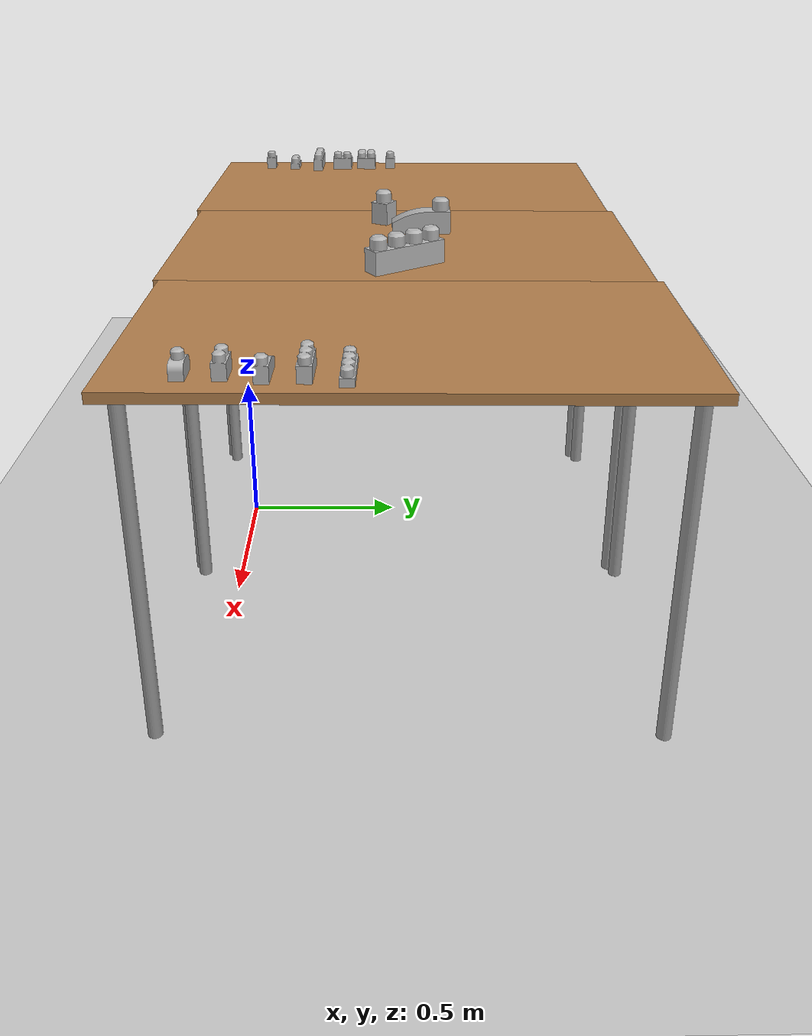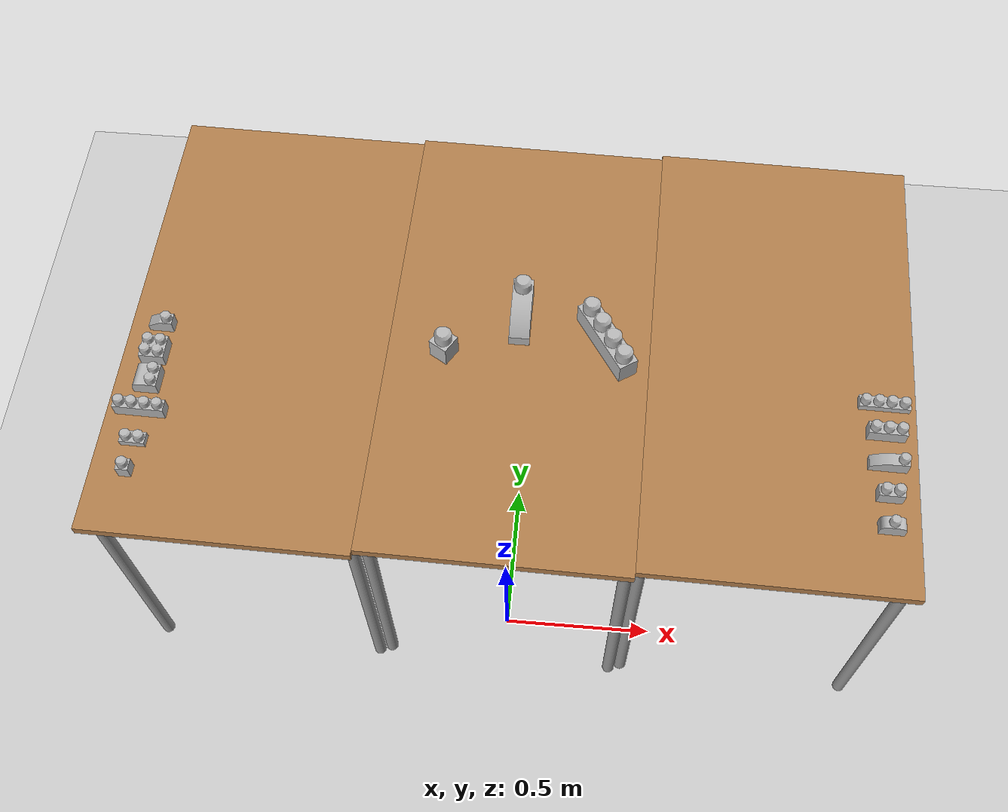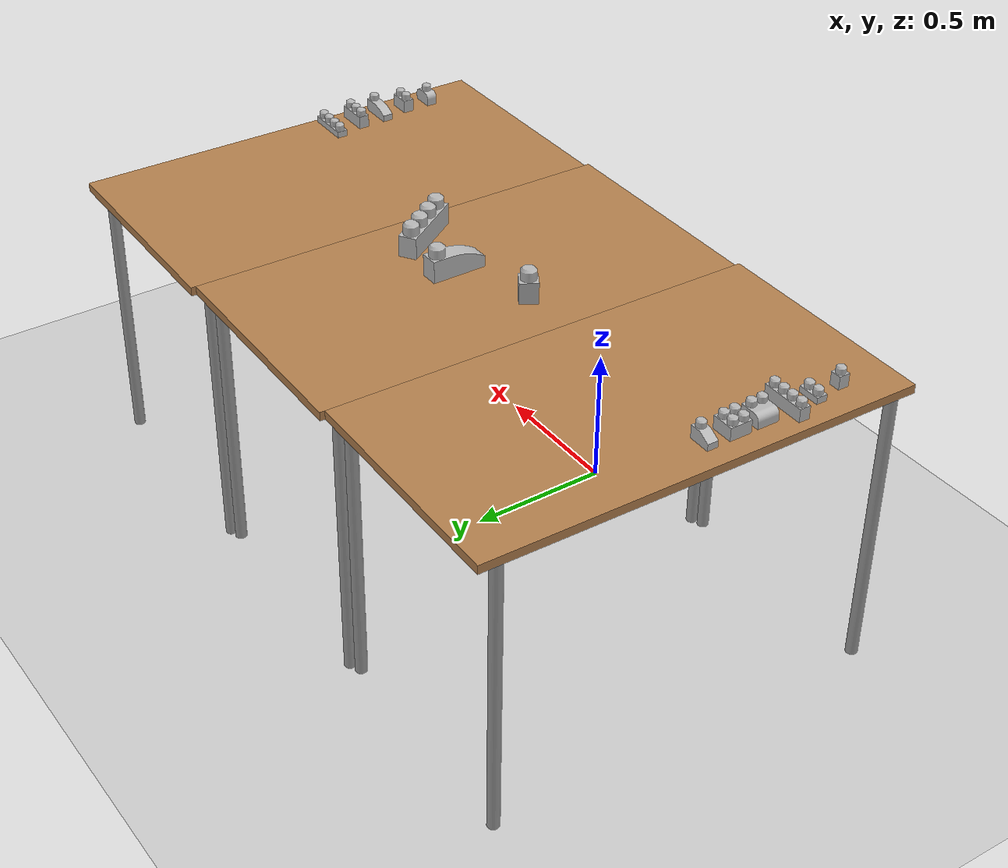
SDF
<sdf version="1.5">
 <world name="default">
  <plugin name="ros_link_attacher_plugin" filename="libgazebo_ros_link_attacher.so"/>
  <include><uri>model://sun</uri></include>
  <include><uri>model://ground_plane</uri></include>
  <model name="X1-Y1-Z2-locked">
   <static>true</static>
   <pose>-1.1 0 1.02 0 0 -1.592925</pose>
   <link name="link">
    <visual name="visual">
     <geometry><mesh><uri>model://X1-Y1-Z2.stl</uri><scale>0.0012 0.0012 0.0012</scale></mesh></geometry>
    </visual>
   </link>
  </model>
  <model name="X1-Y2-Z1-locked">
   <pose>-1.1 0.1 1.02 0 0 -1.592925</pose>
   <static>true</static>
   <link name="link">
    <visual name="visual">
     <geometry><mesh><uri>model://X1-Y2-Z1.stl</uri><scale>0.0012 0.0012 0.0012</scale></mesh></geometry>
    </visual>
   </link>
  </model>
  <model name="X1-Y4-Z2-locked">
   <pose>-1.1 0.2 1.02 0 0 -1.592925</pose>
   <static>true</static>
   <link name="link">
    <visual name="visual">
     <geometry><mesh><uri>model://X1-Y4-Z2.stl</uri><scale>0.0012 0.0012 0.0012</scale></mesh></geometry>
    </visual>
   </link>
  </model>
  <model name="X2-Y2-Z2-FILLET-locked">
   <pose>-1.1 0.3 1.02 0 0 -1.592925</pose>
   <static>true</static>
   <link name="link">
    <visual name="visual">
     <geometry><mesh><uri>model://X2-Y2-Z2-FILLET.stl</uri><scale>0.0012 0.0012 0.0012</scale></mesh></geometry>
    </visual>
   </link>
  </model>
  <model name="X2-Y2-Z2-locked">
   <pose>-1.1 0.4 1.02 0 0 -1.592925</pose>
   <static>true</static>
   <link name="link">
    <visual name="visual">
     <geometry><mesh><uri>model://X2-Y2-Z2.stl</uri><scale>0.0012 0.0012 0.0012</scale></mesh></geometry>
    </visual>
   </link>
  </model>
  <model name="X1-Y2-Z2-CHAMFER-locked">
   <pose>-1.1 0.5 1.02 0 0 -1.592925</pose>
   <link name="link">
    <static>true</static>
    <visual name="visual">
     <geometry><mesh><uri>model://X1-Y2-Z2-CHAMFER.stl</uri><scale>0.0012 0.0012 0.0012</scale></mesh></geometry>
    </visual>
   </link>
  </model>
  <model name="X1-Y2-Z2-TWINFILLET-locked">
   <pose>1.1 0 1.02 0 0 -1.592925</pose>
   <static>true</static>
   <link name="link">
    <visual name="visual">
     <geometry>
      <mesh><uri>model://X1-Y2-Z2-TWINFILLET.stl</uri><scale>0.0012 0.0012 0.0012</scale></mesh>
     </geometry>
    </visual>
   </link>
  </model>
  <model name="X1-Y2-Z2-locked">
   <pose>1.1 0.1 1.02 0 0 -1.592925</pose>
   <static>true</static>
   <link name="link">
    <visual name="visual">
     <geometry><mesh><uri>model://X1-Y2-Z2.stl</uri><scale>0.0012 0.0012 0.0012</scale></mesh></geometry>
    </visual>
   </link>
  </model>
  <model name="X1-Y3-Z2-FILLET-locked">
   <pose>1.1 0.2 1.02 0 0 -1.592925</pose>
   <static>true</static>
   <link name="link">
    <visual name="visual">
     <geometry><mesh><uri>model://X1-Y3-Z2-FILLET.stl</uri><scale>0.0012 0.0012 0.0012</scale></mesh></geometry>
    </visual>
   </link>
  </model>
  <model name="X1-Y3-Z2-locked">
   <pose>1.1 0.3 1.02 0 0 -1.592925</pose>
   <static>true</static>
   <link name="link">
    <visual name="visual">
     <geometry><mesh><uri>model://X1-Y3-Z2.stl</uri><scale>0.0012 0.0012 0.0012</scale></mesh></geometry>
    </visual>
   </link>
  </model>
  <model name="X1-Y4-Z1-locked">
   <static>true</static>
   <pose>1.1 0.4 1.02 0 0 -1.592925</pose>
   <link name="link">
    <visual name="visual">
     <geometry><mesh><uri>model://X1-Y4-Z1.stl</uri><scale>0.0012 0.0012 0.0012</scale></mesh></geometry>
    </visual>
   </link>
  </model>
  <model name="X1-Y3-Z2-FILLET">
   <pose>0 0.6 1.05 0 -0.000093 2,749718</pose>
   <link name="link">
    <inertial>
     <mass>0.1</mass>
     <inertia><ixx>0.000166667</ixx><iyy>0.000166667</iyy><izz>0.000166667</izz></inertia>
    </inertial>
    <collision name="collision">
     <geometry><mesh><uri>model://X1-Y3-Z2-FILLET.stl</uri><scale>0.002 0.002 0.002</scale></mesh></geometry>
    </collision>
    <visual name="visual">
     <geometry><mesh><uri>model://X1-Y3-Z2-FILLET.stl</uri><scale>0.002 0.002 0.002</scale></mesh></geometry>
    </visual>
   </link>
  </model>
  <model name="X1-Y1-Z2">
   <pose>-0.225354 0.476785 1.02 -0.000128 -0.000093 1.021877</pose>
   <link name="link">
    <inertial>
     <mass>0.1</mass>
     <inertia><ixx>0.000166667</ixx><iyy>0.000166667</iyy><izz>0.000166667</izz></inertia>
    </inertial>
    <collision name="collision">
     <geometry><mesh><uri>model://X1-Y1-Z2.stl</uri><scale>0.002 0.002 0.002</scale></mesh></geometry>
    </collision>
    <visual name="visual">
     <geometry><mesh><uri>model://X1-Y1-Z2.stl</uri><scale>0.002 0.002 0.002</scale></mesh></geometry>
    </visual>
   </link>
  </model>
  <model name="X1-Y4-Z2">
   <pose>0.265136 0.544203 1.015000 0 0 0.577600</pose>
   <link name="link">
    <inertial>
     <mass>0.1</mass>
     <inertia><ixx>0.000166667</ixx><iyy>0.000166667</iyy><izz>0.000166667</izz></inertia>
    </inertial>
    <collision name="collision">
     <geometry><mesh><uri>model://X1-Y4-Z2.stl</uri><scale>0.002 0.002 0.002</scale></mesh></geometry>
    </collision>
    <visual name="visual">
     <geometry><mesh><uri>model://X1-Y4-Z2.stl</uri><scale>0.002 0.002 0.002</scale></mesh></geometry>
    </visual>
   </link>
  </model>
  <model name="table1">
   <pose>0 0.55 0 0 0 1.55</pose>
   <static>true</static>
   <link name="link">
    <collision name="surface">
     <pose>0 0 1.0 0 0 0</pose>
     <geometry><box><size>1.5 0.8 0.03</size></box></geometry>
     <surface><friction><ode><mu>0.6</mu><mu2>0.6</mu2></ode></friction></surface>
    </collision>
    <visual name="visual1">
     <pose>0 0 1.0 0 0 0</pose>
     <geometry><box><size>1.5 0.8 0.03</size></box></geometry>
     <material>
      <script><uri>file://media/materials/scripts/gazebo.material</uri><name>Gazebo/Wood</name></script>
     </material>
    </visual>
    <collision name="front_left_leg_c">
     <pose>0.68 0.38 0.5 0 0 0</pose>
     <geometry><cylinder><radius>0.02</radius><length>1.0</length></cylinder></geometry>
    </collision>
    <visual name="front_left_leg_v">
     <pose>0.68 0.38 0.5 0 0 0</pose>
     <geometry><cylinder><radius>0.02</radius><length>1.0</length></cylinder></geometry>
     <material>
      <script><uri>file://media/materials/scripts/gazebo.material</uri><name>Gazebo/Grey</name></script>
     </material>
    </visual>
    <collision name="front_right_leg_c">
     <pose>0.68 -0.38 0.5 0 0 0</pose>
     <geometry><cylinder><radius>0.02</radius><length>1.0</length></cylinder></geometry>
    </collision>
    <visual name="front_right_leg_v">
     <pose>0.68 -0.38 0.5 0 0 0</pose>
     <geometry><cylinder><radius>0.02</radius><length>1.0</length></cylinder></geometry>
     <material>
      <script><uri>file://media/materials/scripts/gazebo.material</uri><name>Gazebo/Grey</name></script>
     </material>
    </visual>
    <collision name="back_right_leg_c">
     <pose>-0.68 -0.38 0.5 0 0 0</pose>
     <geometry><cylinder><radius>0.02</radius><length>1.0</length></cylinder></geometry>
    </collision>
    <visual name="back_right_leg_v">
     <pose>-0.68 -0.38 0.5 0 0 0</pose>
     <geometry><cylinder><radius>0.02</radius><length>1.0</length></cylinder></geometry>
     <material>
      <script><uri>file://media/materials/scripts/gazebo.material</uri><name>Gazebo/Grey</name></script>
     </material>
    </visual>
    <collision name="back_left_leg_c">
     <pose>-0.68 0.38 0.5 0 0 0</pose>
     <geometry><cylinder><radius>0.02</radius><length>1.0</length></cylinder></geometry>
    </collision>
    <visual name="back_left_leg_v">
     <pose>-0.68 0.38 0.5 0 0 0</pose>
     <geometry><cylinder><radius>0.02</radius><length>1.0</length></cylinder></geometry>
     <material>
      <script><uri>file://media/materials/scripts/gazebo.material</uri><name>Gazebo/Grey</name></script>
     </material>
    </visual>
   </link>
  </model>
  <model name="table2">
   <pose>-0.8 0.55 0 0 0 1.55</pose>
   <static>true</static>
   <link name="link">
    <collision name="surface">
     <pose>0 0 1.0 0 0 0</pose>
     <geometry><box><size>1.5 0.8 0.03</size></box></geometry>
     <surface><friction><ode><mu>0.6</mu><mu2>0.6</mu2></ode></friction></surface>
    </collision>
    <visual name="visual1">
     <pose>0 0 1.0 0 0 0</pose>
     <geometry><box><size>1.5 0.8 0.03</size></box></geometry>
     <material>
      <script><uri>file://media/materials/scripts/gazebo.material</uri><name>Gazebo/Wood</name></script>
     </material>
    </visual>
    <collision name="front_left_leg_c">
     <pose>0.68 0.38 0.5 0 0 0</pose>
     <geometry><cylinder><radius>0.02</radius><length>1.0</length></cylinder></geometry>
    </collision>
    <visual name="front_left_leg_v">
     <pose>0.68 0.38 0.5 0 0 0</pose>
     <geometry><cylinder><radius>0.02</radius><length>1.0</length></cylinder></geometry>
     <material>
      <script><uri>file://media/materials/scripts/gazebo.material</uri><name>Gazebo/Grey</name></script>
     </material>
    </visual>
    <collision name="front_right_leg_c">
     <pose>0.68 -0.38 0.5 0 0 0</pose>
     <geometry><cylinder><radius>0.02</radius><length>1.0</length></cylinder></geometry>
    </collision>
    <visual name="front_right_leg_v">
     <pose>0.68 -0.38 0.5 0 0 0</pose>
     <geometry><cylinder><radius>0.02</radius><length>1.0</length></cylinder></geometry>
     <material>
      <script><uri>file://media/materials/scripts/gazebo.material</uri><name>Gazebo/Grey</name></script>
     </material>
    </visual>
    <collision name="back_right_leg_c">
     <pose>-0.68 -0.38 0.5 0 0 0</pose>
     <geometry><cylinder><radius>0.02</radius><length>1.0</length></cylinder></geometry>
    </collision>
    <visual name="back_right_leg_v">
     <pose>-0.68 -0.38 0.5 0 0 0</pose>
     <geometry><cylinder><radius>0.02</radius><length>1.0</length></cylinder></geometry>
     <material>
      <script><uri>file://media/materials/scripts/gazebo.material</uri><name>Gazebo/Grey</name></script>
     </material>
    </visual>
    <collision name="back_left_leg_c">
     <pose>-0.68 0.38 0.5 0 0 0</pose>
     <geometry><cylinder><radius>0.02</radius><length>1.0</length></cylinder></geometry>
    </collision>
    <visual name="back_left_leg_v">
     <pose>-0.68 0.38 0.5 0 0 0</pose>
     <geometry><cylinder><radius>0.02</radius><length>1.0</length></cylinder></geometry>
     <material>
      <script><uri>file://media/materials/scripts/gazebo.material</uri><name>Gazebo/Grey</name></script>
     </material>
    </visual>
   </link>
  </model>
  <model name="table3">
   <pose>0.8 0.55 0 0 0 1.55</pose>
   <static>true</static>
   <link name="link">
    <collision name="surface">
     <pose>0 0 1.0 0 0 0</pose>
     <geometry><box><size>1.5 0.8 0.03</size></box></geometry>
     <surface><friction><ode><mu>0.6</mu><mu2>0.6</mu2></ode></friction></surface>
    </collision>
    <visual name="visual1">
     <pose>0 0 1.0 0 0 0</pose>
     <geometry><box><size>1.5 0.8 0.03</size></box></geometry>
     <material>
      <script><uri>file://media/materials/scripts/gazebo.material</uri><name>Gazebo/Wood</name></script>
     </material>
    </visual>
    <collision name="front_left_leg_c">
     <pose>0.68 0.38 0.5 0 0 0</pose>
     <geometry><cylinder><radius>0.02</radius><length>1.0</length></cylinder></geometry>
    </collision>
    <visual name="front_left_leg_v">
     <pose>0.68 0.38 0.5 0 0 0</pose>
     <geometry><cylinder><radius>0.02</radius><length>1.0</length></cylinder></geometry>
     <material>
      <script><uri>file://media/materials/scripts/gazebo.material</uri><name>Gazebo/Grey</name></script>
     </material>
    </visual>
    <collision name="front_right_leg_c">
     <pose>0.68 -0.38 0.5 0 0 0</pose>
     <geometry><cylinder><radius>0.02</radius><length>1.0</length></cylinder></geometry>
    </collision>
    <visual name="front_right_leg_v">
     <pose>0.68 -0.38 0.5 0 0 0</pose>
     <geometry><cylinder><radius>0.02</radius><length>1.0</length></cylinder></geometry>
     <material>
      <script><uri>file://media/materials/scripts/gazebo.material</uri><name>Gazebo/Grey</name></script>
     </material>
    </visual>
    <collision name="back_right_leg_c">
     <pose>-0.68 -0.38 0.5 0 0 0</pose>
     <geometry><cylinder><radius>0.02</radius><length>1.0</length></cylinder></geometry>
    </collision>
    <visual name="back_right_leg_v">
     <pose>-0.68 -0.38 0.5 0 0 0</pose>
     <geometry><cylinder><radius>0.02</radius><length>1.0</length></cylinder></geometry>
     <material>
      <script><uri>file://media/materials/scripts/gazebo.material</uri><name>Gazebo/Grey</name></script>
     </material>
    </visual>
    <collision name="back_left_leg_c">
     <pose>-0.68 0.38 0.5 0 0 0</pose>
     <geometry><cylinder><radius>0.02</radius><length>1.0</length></cylinder></geometry>
    </collision>
    <visual name="back_left_leg_v">
     <pose>-0.68 0.38 0.5 0 0 0</pose>
     <geometry><cylinder><radius>0.02</radius><length>1.0</length></cylinder></geometry>
     <material>
      <script><uri>file://media/materials/scripts/gazebo.material</uri><name>Gazebo/Grey</name></script>
     </material>
    </visual>
   </link>
  </model>
 </world>
</sdf>
